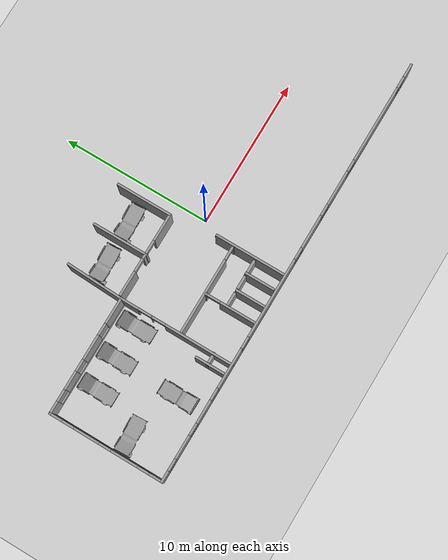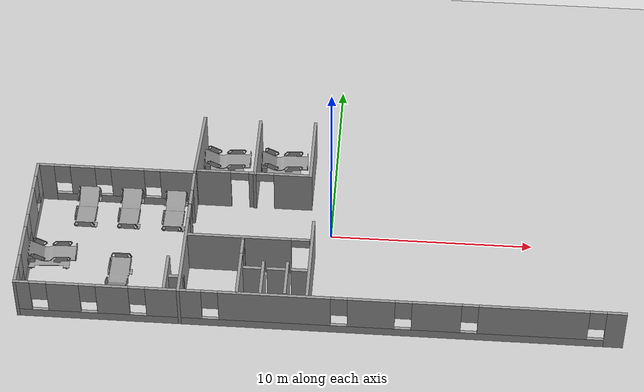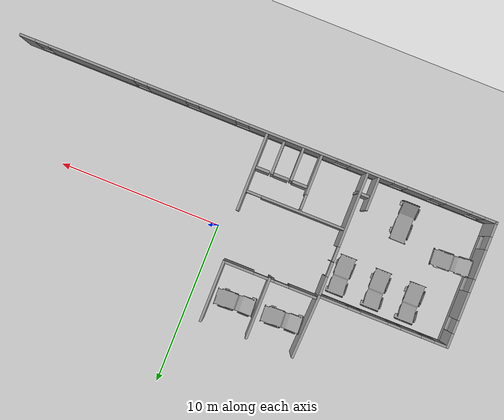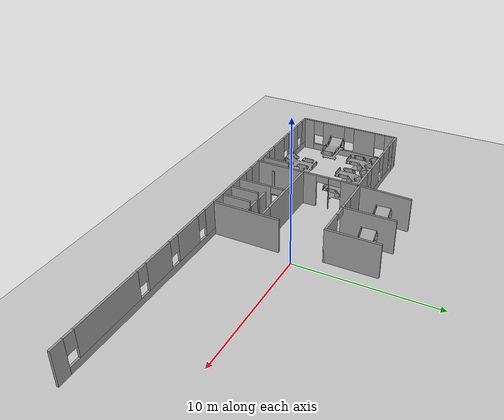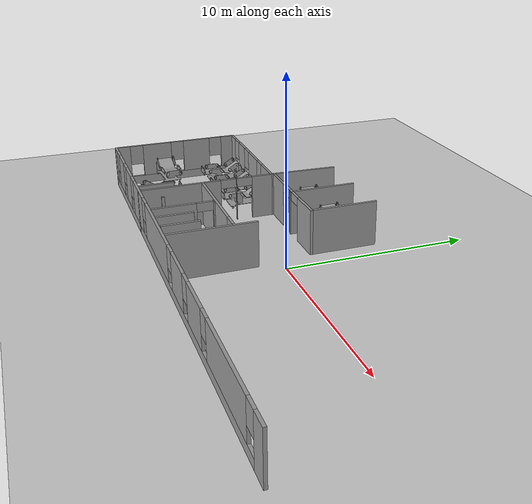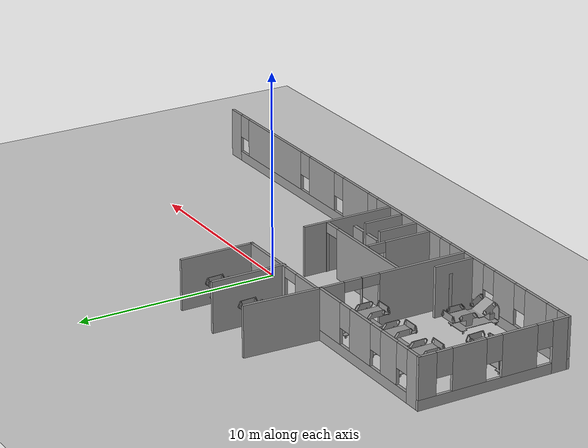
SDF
<sdf version="1.6">
 <world name="default">
  <model name="ground_plane">
   <static>1</static>
   <link name="link">
    <collision name="collision">
     <geometry><plane><normal>0 0 1</normal><size>100 100</size></plane></geometry>
     <surface><friction><ode><mu>100</mu><mu2>50</mu2></ode></friction></surface>
    </collision>
    <visual name="visual">
     <cast_shadows>0</cast_shadows>
     <geometry><plane><normal>0 0 1</normal><size>100 100</size></plane></geometry>
     <material>
      <script><uri>file://media/materials/scripts/gazebo.material</uri><name>Gazebo/Grey</name></script>
     </material>
    </visual>
   </link>
  </model>
  <model name="hopial">
   <pose>-0.234733 -0.327575 0 0 -0 0</pose>
   <link name="Door_15">
    <collision name="Door_15_Collision">
     <geometry><box><size>0.9 0.17 2</size></box></geometry>
     <pose>0 0 1 0 -0 0</pose>
    </collision>
    <visual name="Door_15_Visual">
     <pose>0 0 1 0 -0 0</pose>
     <geometry><box><size>0.9 0.17 2</size></box></geometry>
     <material>
      <script><uri>file://media/materials/scripts/gazebo.material</uri><name>Gazebo/Grey</name></script>
     </material>
    </visual>
    <pose>-1.01365 -3.61001 0 0 -0 0</pose>
   </link>
   <link name="Door_16">
    <collision name="Door_16_Collision">
     <geometry><box><size>0.9 0.17 2</size></box></geometry>
     <pose>0 0 1 0 -0 0</pose>
    </collision>
    <visual name="Door_16_Visual">
     <pose>0 0 1 0 -0 0</pose>
     <geometry><box><size>0.9 0.17 2</size></box></geometry>
     <material>
      <script><uri>file://media/materials/scripts/gazebo.material</uri><name>Gazebo/Grey</name></script>
     </material>
    </visual>
    <pose>-3.33985 -3.61001 0 0 -0 0</pose>
   </link>
   <link name="Door_17">
    <collision name="Door_17_Collision">
     <geometry><box><size>0.9 0.17 2</size></box></geometry>
     <pose>0 0 1 0 -0 0</pose>
    </collision>
    <visual name="Door_17_Visual">
     <pose>0 0 1 0 -0 0</pose>
     <geometry><box><size>0.9 0.17 2</size></box></geometry>
     <material>
      <script><uri>file://media/materials/scripts/gazebo.material</uri><name>Gazebo/Grey</name></script>
     </material>
    </visual>
    <pose>-2.17675 -3.61001 0 0 -0 0</pose>
   </link>
   <link name="Door_18">
    <collision name="Door_18_Collision">
     <geometry><box><size>0.9 0.17 2</size></box></geometry>
     <pose>0 0 1 0 -0 0</pose>
    </collision>
    <visual name="Door_18_Visual">
     <pose>0 0 1 0 -0 0</pose>
     <geometry><box><size>0.9 0.17 2</size></box></geometry>
     <material>
      <script><uri>file://media/materials/scripts/gazebo.material</uri><name>Gazebo/Grey</name></script>
     </material>
    </visual>
    <pose>-7.01524 -4.40091 0 0 -0 0</pose>
   </link>
   <link name="Wall_11">
    <collision name="Wall_11_Collision">
     <geometry><box><size>2 0.15 2.5</size></box></geometry>
     <pose>0 0 1.25 0 -0 0</pose>
    </collision>
    <visual name="Wall_11_Visual">
     <pose>0 0 1.25 0 -0 0</pose>
     <geometry><box><size>2 0.15 2.5</size></box></geometry>
     <material>
      <script><uri>file://media/materials/scripts/gazebo.material</uri><name>Gazebo/Grey</name></script>
      <ambient>1 1 1 1</ambient>
     </material>
    </visual>
    <pose>-7.38743 -4.58153 0 0 0 -1.5708</pose>
   </link>
   <link name="Wall_13">
    <collision name="Wall_13_Collision">
     <geometry><box><size>3.75 0.15 2.5</size></box></geometry>
     <pose>0 0 1.25 0 -0 0</pose>
    </collision>
    <visual name="Wall_13_Visual">
     <pose>0 0 1.25 0 -0 0</pose>
     <geometry><box><size>3.75 0.15 2.5</size></box></geometry>
     <material>
      <script><uri>file://media/materials/scripts/gazebo.material</uri><name>Gazebo/Grey</name></script>
      <ambient>1 1 1 1</ambient>
     </material>
    </visual>
    <pose>-0.920607 3.89478 0 0 0 -1.5708</pose>
   </link>
   <link name="Wall_14">
    <pose>-3.72061 2.09478 0 0 -0 3.14159</pose>
    <visual name="Wall_14_Visual_0">
     <pose>-1.92266 0 1.25 0 -0 0</pose>
     <geometry><box><size>1.90467 0.15 2.5</size></box></geometry>
     <material>
      <script><uri>file://media/materials/scripts/gazebo.material</uri><name>Gazebo/Grey</name></script>
      <ambient>1 1 1 1</ambient>
     </material>
    </visual>
    <collision name="Wall_14_Collision_0">
     <geometry><box><size>1.90467 0.15 2.5</size></box></geometry>
     <pose>-1.92266 0 1.25 0 -0 0</pose>
    </collision>
    <visual name="Wall_14_Visual_1">
     <pose>0.107745 0 1.25 0 -0 0</pose>
     <geometry><box><size>0.356146 0.15 2.5</size></box></geometry>
     <material>
      <script><uri>file://media/materials/scripts/gazebo.material</uri><name>Gazebo/Grey</name></script>
      <ambient>1 1 1 1</ambient>
     </material>
    </visual>
    <collision name="Wall_14_Collision_1">
     <geometry><box><size>0.356146 0.15 2.5</size></box></geometry>
     <pose>0.107745 0 1.25 0 -0 0</pose>
    </collision>
    <visual name="Wall_14_Visual_2">
     <pose>2.03041 0 1.25 0 -0 0</pose>
     <geometry><box><size>1.68918 0.15 2.5</size></box></geometry>
     <material>
      <script><uri>file://media/materials/scripts/gazebo.material</uri><name>Gazebo/Grey</name></script>
      <ambient>1 1 1 1</ambient>
     </material>
    </visual>
    <collision name="Wall_14_Collision_2">
     <geometry><box><size>1.68918 0.15 2.5</size></box></geometry>
     <pose>2.03041 0 1.25 0 -0 0</pose>
    </collision>
    <visual name="Wall_14_Visual_3">
     <pose>-0.520328 0 2.25 0 -0 0</pose>
     <geometry><box><size>0.9 0.15 0.5</size></box></geometry>
     <material>
      <script><uri>file://media/materials/scripts/gazebo.material</uri><name>Gazebo/Grey</name></script>
      <ambient>1 1 1 1</ambient>
     </material>
    </visual>
    <collision name="Wall_14_Collision_3">
     <geometry><box><size>0.9 0.15 0.5</size></box></geometry>
     <pose>-0.520328 0 2.25 0 -0 0</pose>
    </collision>
    <visual name="Wall_14_Visual_4">
     <pose>0.735818 0 2.25 0 -0 0</pose>
     <geometry><box><size>0.9 0.15 0.5</size></box></geometry>
     <material>
      <script><uri>file://media/materials/scripts/gazebo.material</uri><name>Gazebo/Grey</name></script>
      <ambient>1 1 1 1</ambient>
     </material>
    </visual>
    <collision name="Wall_14_Collision_4">
     <geometry><box><size>0.9 0.15 0.5</size></box></geometry>
     <pose>0.735818 0 2.25 0 -0 0</pose>
    </collision>
   </link>
   <link name="Wall_16">
    <collision name="Wall_16_Collision">
     <geometry><box><size>3.75 0.15 2.5</size></box></geometry>
     <pose>0 0 1.25 0 -0 0</pose>
    </collision>
    <visual name="Wall_16_Visual">
     <pose>0 0 1.25 0 -0 0</pose>
     <geometry><box><size>3.75 0.15 2.5</size></box></geometry>
     <material>
      <script><uri>file://media/materials/scripts/gazebo.material</uri><name>Gazebo/Grey</name></script>
      <ambient>1 1 1 1</ambient>
     </material>
    </visual>
    <pose>-3.71204 3.84825 0 0 0 -1.5708</pose>
   </link>
   <link name="Wall_2">
    <pose>0 -5.65522 0 0 -0 3.14159</pose>
    <visual name="Wall_2_Visual_0">
     <pose>-14.1471 0 1.25 0 -0 0</pose>
     <geometry><box><size>0.955813 0.15 2.5</size></box></geometry>
     <material>
      <script><uri>file://media/materials/scripts/gazebo.material</uri><name>Gazebo/Grey</name></script>
      <ambient>1 1 1 1</ambient>
     </material>
    </visual>
    <collision name="Wall_2_Collision_0">
     <geometry><box><size>0.955813 0.15 2.5</size></box></geometry>
     <pose>-14.1471 0 1.25 0 -0 0</pose>
    </collision>
    <visual name="Wall_2_Visual_1">
     <pose>0.477906 0 0.25 0 -0 0</pose>
     <geometry><box><size>28.2942 0.15 0.5</size></box></geometry>
     <material>
      <script><uri>file://media/materials/scripts/gazebo.material</uri><name>Gazebo/Grey</name></script>
      <ambient>1 1 1 1</ambient>
     </material>
    </visual>
    <collision name="Wall_2_Collision_1">
     <geometry><box><size>28.2942 0.15 0.5</size></box></geometry>
     <pose>0.477906 0 0.25 0 -0 0</pose>
    </collision>
    <visual name="Wall_2_Visual_2">
     <pose>-10.2451 0 1.5 0 -0 0</pose>
     <geometry><box><size>5.24811 0.15 2</size></box></geometry>
     <material>
      <script><uri>file://media/materials/scripts/gazebo.material</uri><name>Gazebo/Grey</name></script>
      <ambient>1 1 1 1</ambient>
     </material>
    </visual>
    <collision name="Wall_2_Collision_2">
     <geometry><box><size>5.24811 0.15 2</size></box></geometry>
     <pose>-10.2451 0 1.5 0 -0 0</pose>
    </collision>
    <visual name="Wall_2_Visual_3">
     <pose>-5.63926 0 1.5 0 -0 0</pose>
     <geometry><box><size>2.36363 0.15 2</size></box></geometry>
     <material>
      <script><uri>file://media/materials/scripts/gazebo.material</uri><name>Gazebo/Grey</name></script>
      <ambient>1 1 1 1</ambient>
     </material>
    </visual>
    <collision name="Wall_2_Collision_3">
     <geometry><box><size>2.36363 0.15 2</size></box></geometry>
     <pose>-5.63926 0 1.5 0 -0 0</pose>
    </collision>
    <visual name="Wall_2_Visual_4">
     <pose>-2.52216 0 1.5 0 -0 0</pose>
     <geometry><box><size>2.27058 0.15 2</size></box></geometry>
     <material>
      <script><uri>file://media/materials/scripts/gazebo.material</uri><name>Gazebo/Grey</name></script>
      <ambient>1 1 1 1</ambient>
     </material>
    </visual>
    <collision name="Wall_2_Collision_4">
     <geometry><box><size>2.27058 0.15 2</size></box></geometry>
     <pose>-2.52216 0 1.5 0 -0 0</pose>
    </collision>
    <visual name="Wall_2_Visual_5">
     <pose>2.10697 0 1.5 0 -0 0</pose>
     <geometry><box><size>5.38768 0.15 2</size></box></geometry>
     <material>
      <script><uri>file://media/materials/scripts/gazebo.material</uri><name>Gazebo/Grey</name></script>
      <ambient>1 1 1 1</ambient>
     </material>
    </visual>
    <collision name="Wall_2_Collision_5">
     <geometry><box><size>5.38768 0.15 2</size></box></geometry>
     <pose>2.10697 0 1.5 0 -0 0</pose>
    </collision>
    <visual name="Wall_2_Visual_6">
     <pose>6.94545 0 1.5 0 -0 0</pose>
     <geometry><box><size>2.68929 0.15 2</size></box></geometry>
     <material>
      <script><uri>file://media/materials/scripts/gazebo.material</uri><name>Gazebo/Grey</name></script>
      <ambient>1 1 1 1</ambient>
     </material>
    </visual>
    <collision name="Wall_2_Collision_6">
     <geometry><box><size>2.68929 0.15 2</size></box></geometry>
     <pose>6.94545 0 1.5 0 -0 0</pose>
    </collision>
    <visual name="Wall_2_Visual_7">
     <pose>9.87646 0 1.5 0 -0 0</pose>
     <geometry><box><size>1.57272 0.15 2</size></box></geometry>
     <material>
      <script><uri>file://media/materials/scripts/gazebo.material</uri><name>Gazebo/Grey</name></script>
      <ambient>1 1 1 1</ambient>
     </material>
    </visual>
    <collision name="Wall_2_Collision_7">
     <geometry><box><size>1.57272 0.15 2</size></box></geometry>
     <pose>9.87646 0 1.5 0 -0 0</pose>
    </collision>
    <visual name="Wall_2_Visual_8">
     <pose>12.2492 0 1.5 0 -0 0</pose>
     <geometry><box><size>1.57272 0.15 2</size></box></geometry>
     <material>
      <script><uri>file://media/materials/scripts/gazebo.material</uri><name>Gazebo/Grey</name></script>
      <ambient>1 1 1 1</ambient>
     </material>
    </visual>
    <collision name="Wall_2_Collision_8">
     <geometry><box><size>1.57272 0.15 2</size></box></geometry>
     <pose>12.2492 0 1.5 0 -0 0</pose>
    </collision>
    <visual name="Wall_2_Visual_9">
     <pose>14.2303 0 1.5 0 -0 0</pose>
     <geometry><box><size>0.789461 0.15 2</size></box></geometry>
     <material>
      <script><uri>file://media/materials/scripts/gazebo.material</uri><name>Gazebo/Grey</name></script>
      <ambient>1 1 1 1</ambient>
     </material>
    </visual>
    <collision name="Wall_2_Collision_9">
     <geometry><box><size>0.789461 0.15 2</size></box></geometry>
     <pose>14.2303 0 1.5 0 -0 0</pose>
    </collision>
    <visual name="Wall_2_Visual_10">
     <pose>-13.2692 0 1.9 0 -0 0</pose>
     <geometry><box><size>0.8 0.15 1.2</size></box></geometry>
     <material>
      <script><uri>file://media/materials/scripts/gazebo.material</uri><name>Gazebo/Grey</name></script>
      <ambient>1 1 1 1</ambient>
     </material>
    </visual>
    <collision name="Wall_2_Collision_10">
     <geometry><box><size>0.8 0.15 1.2</size></box></geometry>
     <pose>-13.2692 0 1.9 0 -0 0</pose>
    </collision>
    <visual name="Wall_2_Visual_11">
     <pose>-7.22108 0 1.9 0 -0 0</pose>
     <geometry><box><size>0.8 0.15 1.2</size></box></geometry>
     <material>
      <script><uri>file://media/materials/scripts/gazebo.material</uri><name>Gazebo/Grey</name></script>
      <ambient>1 1 1 1</ambient>
     </material>
    </visual>
    <collision name="Wall_2_Collision_11">
     <geometry><box><size>0.8 0.15 1.2</size></box></geometry>
     <pose>-7.22108 0 1.9 0 -0 0</pose>
    </collision>
    <visual name="Wall_2_Visual_12">
     <pose>-4.05745 0 1.9 0 -0 0</pose>
     <geometry><box><size>0.8 0.15 1.2</size></box></geometry>
     <material>
      <script><uri>file://media/materials/scripts/gazebo.material</uri><name>Gazebo/Grey</name></script>
      <ambient>1 1 1 1</ambient>
     </material>
    </visual>
    <collision name="Wall_2_Collision_12">
     <geometry><box><size>0.8 0.15 1.2</size></box></geometry>
     <pose>-4.05745 0 1.9 0 -0 0</pose>
    </collision>
    <visual name="Wall_2_Visual_13">
     <pose>-0.986874 0 1.9 0 -0 0</pose>
     <geometry><box><size>0.8 0.15 1.2</size></box></geometry>
     <material>
      <script><uri>file://media/materials/scripts/gazebo.material</uri><name>Gazebo/Grey</name></script>
      <ambient>1 1 1 1</ambient>
     </material>
    </visual>
    <collision name="Wall_2_Collision_13">
     <geometry><box><size>0.8 0.15 1.2</size></box></geometry>
     <pose>-0.986874 0 1.9 0 -0 0</pose>
    </collision>
    <visual name="Wall_2_Visual_14">
     <pose>5.20081 0 1.9 0 -0 0</pose>
     <geometry><box><size>0.8 0.15 1.2</size></box></geometry>
     <material>
      <script><uri>file://media/materials/scripts/gazebo.material</uri><name>Gazebo/Grey</name></script>
      <ambient>1 1 1 1</ambient>
     </material>
    </visual>
    <collision name="Wall_2_Collision_14">
     <geometry><box><size>0.8 0.15 1.2</size></box></geometry>
     <pose>5.20081 0 1.9 0 -0 0</pose>
    </collision>
    <visual name="Wall_2_Visual_15">
     <pose>8.6901 0 1.9 0 -0 0</pose>
     <geometry><box><size>0.8 0.15 1.2</size></box></geometry>
     <material>
      <script><uri>file://media/materials/scripts/gazebo.material</uri><name>Gazebo/Grey</name></script>
      <ambient>1 1 1 1</ambient>
     </material>
    </visual>
    <collision name="Wall_2_Collision_15">
     <geometry><box><size>0.8 0.15 1.2</size></box></geometry>
     <pose>8.6901 0 1.9 0 -0 0</pose>
    </collision>
    <visual name="Wall_2_Visual_16">
     <pose>11.0628 0 1.9 0 -0 0</pose>
     <geometry><box><size>0.8 0.15 1.2</size></box></geometry>
     <material>
      <script><uri>file://media/materials/scripts/gazebo.material</uri><name>Gazebo/Grey</name></script>
      <ambient>1 1 1 1</ambient>
     </material>
    </visual>
    <collision name="Wall_2_Collision_16">
     <geometry><box><size>0.8 0.15 1.2</size></box></geometry>
     <pose>11.0628 0 1.9 0 -0 0</pose>
    </collision>
    <visual name="Wall_2_Visual_17">
     <pose>13.4355 0 1.9 0 -0 0</pose>
     <geometry><box><size>0.8 0.15 1.2</size></box></geometry>
     <material>
      <script><uri>file://media/materials/scripts/gazebo.material</uri><name>Gazebo/Grey</name></script>
      <ambient>1 1 1 1</ambient>
     </material>
    </visual>
    <collision name="Wall_2_Collision_17">
     <geometry><box><size>0.8 0.15 1.2</size></box></geometry>
     <pose>13.4355 0 1.9 0 -0 0</pose>
    </collision>
   </link>
   <link name="Wall_21">
    <pose>-3.625 -2.12124 0 0 -0 0</pose>
    <visual name="Wall_21_Visual_0">
     <pose>-0.465851 0 1.25 0 -0 0</pose>
     <geometry><box><size>5.0683 0.15 2.5</size></box></geometry>
     <material>
      <script><uri>file://media/materials/scripts/gazebo.material</uri><name>Gazebo/Grey</name></script>
      <ambient>1 1 1 1</ambient>
     </material>
    </visual>
    <collision name="Wall_21_Collision_0">
     <geometry><box><size>5.0683 0.15 2.5</size></box></geometry>
     <pose>-0.465851 0 1.25 0 -0 0</pose>
    </collision>
    <visual name="Wall_21_Visual_1">
     <pose>2.98415 0 1.25 0 -0 0</pose>
     <geometry><box><size>0.031702 0.15 2.5</size></box></geometry>
     <material>
      <script><uri>file://media/materials/scripts/gazebo.material</uri><name>Gazebo/Grey</name></script>
      <ambient>1 1 1 1</ambient>
     </material>
    </visual>
    <collision name="Wall_21_Collision_1">
     <geometry><box><size>0.031702 0.15 2.5</size></box></geometry>
     <pose>2.98415 0 1.25 0 -0 0</pose>
    </collision>
    <visual name="Wall_21_Visual_2">
     <pose>2.5183 0 2.25 0 -0 0</pose>
     <geometry><box><size>0.9 0.15 0.5</size></box></geometry>
     <material>
      <script><uri>file://media/materials/scripts/gazebo.material</uri><name>Gazebo/Grey</name></script>
      <ambient>1 1 1 1</ambient>
     </material>
    </visual>
    <collision name="Wall_21_Collision_2">
     <geometry><box><size>0.9 0.15 0.5</size></box></geometry>
     <pose>2.5183 0 2.25 0 -0 0</pose>
    </collision>
   </link>
   <link name="Wall_23">
    <collision name="Wall_23_Collision">
     <geometry><box><size>4.75 0.15 2.5</size></box></geometry>
     <pose>0 0 1.25 0 -0 0</pose>
    </collision>
    <visual name="Wall_23_Visual">
     <pose>0 0 1.25 0 -0 0</pose>
     <geometry><box><size>4.75 0.15 2.5</size></box></geometry>
     <material>
      <script><uri>file://media/materials/scripts/gazebo.material</uri><name>Gazebo/Grey</name></script>
      <ambient>1 1 1 1</ambient>
     </material>
    </visual>
    <pose>-0.548415 -3.25814 0 0 0 -1.5708</pose>
   </link>
   <link name="Wall_25">
    <collision name="Wall_25_Collision">
     <geometry><box><size>2 0.15 2.5</size></box></geometry>
     <pose>0 0 1.25 0 -0 0</pose>
    </collision>
    <visual name="Wall_25_Visual">
     <pose>0 0 1.25 0 -0 0</pose>
     <geometry><box><size>2 0.15 2.5</size></box></geometry>
     <material>
      <script><uri>file://media/materials/scripts/gazebo.material</uri><name>Gazebo/Grey</name></script>
      <ambient>1 1 1 1</ambient>
     </material>
    </visual>
    <pose>-1.61847 -4.53501 0 0 0 -1.5708</pose>
   </link>
   <link name="Wall_28">
    <collision name="Wall_28_Collision">
     <geometry><box><size>2 0.15 2.5</size></box></geometry>
     <pose>0 0 1.25 0 -0 0</pose>
    </collision>
    <visual name="Wall_28_Visual">
     <pose>0 0 1.25 0 -0 0</pose>
     <geometry><box><size>2 0.15 2.5</size></box></geometry>
     <material>
      <script><uri>file://media/materials/scripts/gazebo.material</uri><name>Gazebo/Grey</name></script>
      <ambient>1 1 1 1</ambient>
     </material>
    </visual>
    <pose>-2.78156 -4.58153 0 0 0 -1.5708</pose>
   </link>
   <link name="Wall_3">
    <pose>-14.55 -1.85522 0 0 -0 1.5708</pose>
    <visual name="Wall_3_Visual_0">
     <pose>-3.41034 0 1.25 0 -0 0</pose>
     <geometry><box><size>0.929311 0.15 2.5</size></box></geometry>
     <material>
      <script><uri>file://media/materials/scripts/gazebo.material</uri><name>Gazebo/Grey</name></script>
      <ambient>1 1 1 1</ambient>
     </material>
    </visual>
    <collision name="Wall_3_Collision_0">
     <geometry><box><size>0.929311 0.15 2.5</size></box></geometry>
     <pose>-3.41034 0 1.25 0 -0 0</pose>
    </collision>
    <visual name="Wall_3_Visual_1">
     <pose>0.464655 0 0.25 0 -0 0</pose>
     <geometry><box><size>6.82069 0.15 0.5</size></box></geometry>
     <material>
      <script><uri>file://media/materials/scripts/gazebo.material</uri><name>Gazebo/Grey</name></script>
      <ambient>1 1 1 1</ambient>
     </material>
    </visual>
    <collision name="Wall_3_Collision_1">
     <geometry><box><size>6.82069 0.15 0.5</size></box></geometry>
     <pose>0.464655 0 0.25 0 -0 0</pose>
    </collision>
    <visual name="Wall_3_Visual_2">
     <pose>-1.24302 0 1.5 0 -0 0</pose>
     <geometry><box><size>1.80534 0.15 2</size></box></geometry>
     <material>
      <script><uri>file://media/materials/scripts/gazebo.material</uri><name>Gazebo/Grey</name></script>
      <ambient>1 1 1 1</ambient>
     </material>
    </visual>
    <collision name="Wall_3_Collision_2">
     <geometry><box><size>1.80534 0.15 2</size></box></geometry>
     <pose>-1.24302 0 1.5 0 -0 0</pose>
    </collision>
    <visual name="Wall_3_Visual_3">
     <pose>1.3158 0 1.5 0 -0 0</pose>
     <geometry><box><size>1.71229 0.15 2</size></box></geometry>
     <material>
      <script><uri>file://media/materials/scripts/gazebo.material</uri><name>Gazebo/Grey</name></script>
      <ambient>1 1 1 1</ambient>
     </material>
    </visual>
    <collision name="Wall_3_Collision_3">
     <geometry><box><size>1.71229 0.15 2</size></box></geometry>
     <pose>1.3158 0 1.5 0 -0 0</pose>
    </collision>
    <visual name="Wall_3_Visual_4">
     <pose>3.42347 0 1.5 0 -0 0</pose>
     <geometry><box><size>0.903059 0.15 2</size></box></geometry>
     <material>
      <script><uri>file://media/materials/scripts/gazebo.material</uri><name>Gazebo/Grey</name></script>
      <ambient>1 1 1 1</ambient>
     </material>
    </visual>
    <collision name="Wall_3_Collision_4">
     <geometry><box><size>0.903059 0.15 2</size></box></geometry>
     <pose>3.42347 0 1.5 0 -0 0</pose>
    </collision>
    <visual name="Wall_3_Visual_5">
     <pose>-2.54569 0 1.9 0 -0 0</pose>
     <geometry><box><size>0.8 0.15 1.2</size></box></geometry>
     <material>
      <script><uri>file://media/materials/scripts/gazebo.material</uri><name>Gazebo/Grey</name></script>
      <ambient>1 1 1 1</ambient>
     </material>
    </visual>
    <collision name="Wall_3_Collision_5">
     <geometry><box><size>0.8 0.15 1.2</size></box></geometry>
     <pose>-2.54569 0 1.9 0 -0 0</pose>
    </collision>
    <visual name="Wall_3_Visual_6">
     <pose>0.05965 0 1.9 0 -0 0</pose>
     <geometry><box><size>0.8 0.15 1.2</size></box></geometry>
     <material>
      <script><uri>file://media/materials/scripts/gazebo.material</uri><name>Gazebo/Grey</name></script>
      <ambient>1 1 1 1</ambient>
     </material>
    </visual>
    <collision name="Wall_3_Collision_6">
     <geometry><box><size>0.8 0.15 1.2</size></box></geometry>
     <pose>0.05965 0 1.9 0 -0 0</pose>
    </collision>
    <visual name="Wall_3_Visual_7">
     <pose>2.57194 0 1.9 0 -0 0</pose>
     <geometry><box><size>0.8 0.15 1.2</size></box></geometry>
     <material>
      <script><uri>file://media/materials/scripts/gazebo.material</uri><name>Gazebo/Grey</name></script>
      <ambient>1 1 1 1</ambient>
     </material>
    </visual>
    <collision name="Wall_3_Collision_7">
     <geometry><box><size>0.8 0.15 1.2</size></box></geometry>
     <pose>2.57194 0 1.9 0 -0 0</pose>
    </collision>
   </link>
   <link name="Wall_30">
    <pose>-3.89814 -3.88929 0 0 0 -1.5708</pose>
    <visual name="Wall_30_Visual_0">
     <pose>-1.68162 0 1.25 0 -0 0</pose>
     <geometry><box><size>0.136763 0.15 2.5</size></box></geometry>
     <material>
      <script><uri>file://media/materials/scripts/gazebo.material</uri><name>Gazebo/Grey</name></script>
      <ambient>1 1 1 1</ambient>
     </material>
    </visual>
    <collision name="Wall_30_Collision_0">
     <geometry><box><size>0.136763 0.15 2.5</size></box></geometry>
     <pose>-1.68162 0 1.25 0 -0 0</pose>
    </collision>
    <visual name="Wall_30_Visual_1">
     <pose>0.518381 0 1.25 0 -0 0</pose>
     <geometry><box><size>2.46324 0.15 2.5</size></box></geometry>
     <material>
      <script><uri>file://media/materials/scripts/gazebo.material</uri><name>Gazebo/Grey</name></script>
      <ambient>1 1 1 1</ambient>
     </material>
    </visual>
    <collision name="Wall_30_Collision_1">
     <geometry><box><size>2.46324 0.15 2.5</size></box></geometry>
     <pose>0.518381 0 1.25 0 -0 0</pose>
    </collision>
    <visual name="Wall_30_Visual_2">
     <pose>-1.16324 0 2.25 0 -0 0</pose>
     <geometry><box><size>0.9 0.15 0.5</size></box></geometry>
     <material>
      <script><uri>file://media/materials/scripts/gazebo.material</uri><name>Gazebo/Grey</name></script>
      <ambient>1 1 1 1</ambient>
     </material>
    </visual>
    <collision name="Wall_30_Collision_2">
     <geometry><box><size>0.9 0.15 0.5</size></box></geometry>
     <pose>-1.16324 0 2.25 0 -0 0</pose>
    </collision>
   </link>
   <link name="Wall_4">
    <pose>-10.625 1.94478 0 0 -0 0</pose>
    <visual name="Wall_4_Visual_0">
     <pose>-3.55875 0 1.25 0 -0 0</pose>
     <geometry><box><size>0.882509 0.15 2.5</size></box></geometry>
     <material>
      <script><uri>file://media/materials/scripts/gazebo.material</uri><name>Gazebo/Grey</name></script>
      <ambient>1 1 1 1</ambient>
     </material>
    </visual>
    <collision name="Wall_4_Collision_0">
     <geometry><box><size>0.882509 0.15 2.5</size></box></geometry>
     <pose>-3.55875 0 1.25 0 -0 0</pose>
    </collision>
    <visual name="Wall_4_Visual_1">
     <pose>0.441254 0 0.25 0 -0 0</pose>
     <geometry><box><size>7.11749 0.15 0.5</size></box></geometry>
     <material>
      <script><uri>file://media/materials/scripts/gazebo.material</uri><name>Gazebo/Grey</name></script>
      <ambient>1 1 1 1</ambient>
     </material>
    </visual>
    <collision name="Wall_4_Collision_1">
     <geometry><box><size>7.11749 0.15 0.5</size></box></geometry>
     <pose>0.441254 0 0.25 0 -0 0</pose>
    </collision>
    <visual name="Wall_4_Visual_2">
     <pose>-1.69396 0 1.5 0 -0 0</pose>
     <geometry><box><size>1.24705 0.15 2</size></box></geometry>
     <material>
      <script><uri>file://media/materials/scripts/gazebo.material</uri><name>Gazebo/Grey</name></script>
      <ambient>1 1 1 1</ambient>
     </material>
    </visual>
    <collision name="Wall_4_Collision_2">
     <geometry><box><size>1.24705 0.15 2</size></box></geometry>
     <pose>-1.69396 0 1.5 0 -0 0</pose>
    </collision>
    <visual name="Wall_4_Visual_3">
     <pose>0.562444 0 1.5 0 -0 0</pose>
     <geometry><box><size>1.66577 0.15 2</size></box></geometry>
     <material>
      <script><uri>file://media/materials/scripts/gazebo.material</uri><name>Gazebo/Grey</name></script>
      <ambient>1 1 1 1</ambient>
     </material>
    </visual>
    <collision name="Wall_4_Collision_3">
     <geometry><box><size>1.66577 0.15 2</size></box></geometry>
     <pose>0.562444 0 1.5 0 -0 0</pose>
    </collision>
    <visual name="Wall_4_Visual_4">
     <pose>3.09766 0 1.5 0 -0 0</pose>
     <geometry><box><size>1.80467 0.15 2</size></box></geometry>
     <material>
      <script><uri>file://media/materials/scripts/gazebo.material</uri><name>Gazebo/Grey</name></script>
      <ambient>1 1 1 1</ambient>
     </material>
    </visual>
    <collision name="Wall_4_Collision_4">
     <geometry><box><size>1.80467 0.15 2</size></box></geometry>
     <pose>3.09766 0 1.5 0 -0 0</pose>
    </collision>
    <visual name="Wall_4_Visual_5">
     <pose>-2.71749 0 1.9 0 -0 0</pose>
     <geometry><box><size>0.8 0.15 1.2</size></box></geometry>
     <material>
      <script><uri>file://media/materials/scripts/gazebo.material</uri><name>Gazebo/Grey</name></script>
      <ambient>1 1 1 1</ambient>
     </material>
    </visual>
    <collision name="Wall_4_Collision_5">
     <geometry><box><size>0.8 0.15 1.2</size></box></geometry>
     <pose>-2.71749 0 1.9 0 -0 0</pose>
    </collision>
    <visual name="Wall_4_Visual_6">
     <pose>-0.67044 0 1.9 0 -0 0</pose>
     <geometry><box><size>0.8 0.15 1.2</size></box></geometry>
     <material>
      <script><uri>file://media/materials/scripts/gazebo.material</uri><name>Gazebo/Grey</name></script>
      <ambient>1 1 1 1</ambient>
     </material>
    </visual>
    <collision name="Wall_4_Collision_6">
     <geometry><box><size>0.8 0.15 1.2</size></box></geometry>
     <pose>-0.67044 0 1.9 0 -0 0</pose>
    </collision>
    <visual name="Wall_4_Visual_7">
     <pose>1.79533 0 1.9 0 -0 0</pose>
     <geometry><box><size>0.8 0.15 1.2</size></box></geometry>
     <material>
      <script><uri>file://media/materials/scripts/gazebo.material</uri><name>Gazebo/Grey</name></script>
      <ambient>1 1 1 1</ambient>
     </material>
    </visual>
    <collision name="Wall_4_Collision_7">
     <geometry><box><size>0.8 0.15 1.2</size></box></geometry>
     <pose>1.79533 0 1.9 0 -0 0</pose>
    </collision>
   </link>
   <link name="Wall_5">
    <collision name="Wall_5_Collision">
     <geometry><box><size>3.903 0.15 2.5</size></box></geometry>
     <pose>0 0 1.25 0 -0 0</pose>
    </collision>
    <visual name="Wall_5_Visual">
     <pose>0 0 1.25 0 -0 0</pose>
     <geometry><box><size>3.903 0.15 2.5</size></box></geometry>
     <material>
      <script><uri>file://media/materials/scripts/gazebo.material</uri><name>Gazebo/Grey</name></script>
      <ambient>1 1 1 1</ambient>
     </material>
    </visual>
    <pose>-6.625 3.81978 0 0 -0 1.53082</pose>
   </link>
   <link name="Wall_9">
    <pose>-6.7 -1.85522 0 0 0 -1.5708</pose>
    <visual name="Wall_9_Visual_0">
     <pose>-3.23911 0 1.25 0 -0 0</pose>
     <geometry><box><size>1.27177 0.15 2.5</size></box></geometry>
     <material>
      <script><uri>file://media/materials/scripts/gazebo.material</uri><name>Gazebo/Grey</name></script>
      <ambient>1 1 1 1</ambient>
     </material>
    </visual>
    <collision name="Wall_9_Collision_0">
     <geometry><box><size>1.27177 0.15 2.5</size></box></geometry>
     <pose>-3.23911 0 1.25 0 -0 0</pose>
    </collision>
    <visual name="Wall_9_Visual_1">
     <pose>-1.68799 0 1.25 0 -0 0</pose>
     <geometry><box><size>0.030478 0.15 2.5</size></box></geometry>
     <material>
      <script><uri>file://media/materials/scripts/gazebo.material</uri><name>Gazebo/Grey</name></script>
      <ambient>1 1 1 1</ambient>
     </material>
    </visual>
    <collision name="Wall_9_Collision_1">
     <geometry><box><size>0.030478 0.15 2.5</size></box></geometry>
     <pose>-1.68799 0 1.25 0 -0 0</pose>
    </collision>
    <visual name="Wall_9_Visual_2">
     <pose>1.55113 0 1.25 0 -0 0</pose>
     <geometry><box><size>4.64775 0.15 2.5</size></box></geometry>
     <material>
      <script><uri>file://media/materials/scripts/gazebo.material</uri><name>Gazebo/Grey</name></script>
      <ambient>1 1 1 1</ambient>
     </material>
    </visual>
    <collision name="Wall_9_Collision_2">
     <geometry><box><size>4.64775 0.15 2.5</size></box></geometry>
     <pose>1.55113 0 1.25 0 -0 0</pose>
    </collision>
    <visual name="Wall_9_Visual_3">
     <pose>-2.15323 0 2.25 0 -0 0</pose>
     <geometry><box><size>0.9 0.15 0.5</size></box></geometry>
     <material>
      <script><uri>file://media/materials/scripts/gazebo.material</uri><name>Gazebo/Grey</name></script>
      <ambient>1 1 1 1</ambient>
     </material>
    </visual>
    <collision name="Wall_9_Collision_3">
     <geometry><box><size>0.9 0.15 0.5</size></box></geometry>
     <pose>-2.15323 0 2.25 0 -0 0</pose>
    </collision>
    <visual name="Wall_9_Visual_4">
     <pose>-1.22275 0 2.25 0 -0 0</pose>
     <geometry><box><size>0.9 0.15 0.5</size></box></geometry>
     <material>
      <script><uri>file://media/materials/scripts/gazebo.material</uri><name>Gazebo/Grey</name></script>
      <ambient>1 1 1 1</ambient>
     </material>
    </visual>
    <collision name="Wall_9_Collision_4">
     <geometry><box><size>0.9 0.15 0.5</size></box></geometry>
     <pose>-1.22275 0 2.25 0 -0 0</pose>
    </collision>
   </link>
   <static>1</static>
  </model>
  <model name="hospitalbed">
   <link name="link">
    <pose>-0.225882 -1.75851 0 0 -0 0</pose>
    <inertial>
     <mass>1</mass>
     <inertia>
      <ixx>0.166667</ixx>
      <ixy>0</ixy>
      <ixz>0</ixz>
      <iyy>0.166667</iyy>
      <iyz>0</iyz>
      <izz>0.166667</izz>
     </inertia>
    </inertial>
    <visual name="visual">
     <geometry><mesh><uri>/home/firas/Desktop/model.dae</uri><scale>1 1 1</scale></mesh></geometry>
     <material>
      <script><name>Gazebo/Grey</name><uri>file://media/materials/scripts/gazebo.material</uri></script>
      <ambient>0.3 0.3 0.3 1</ambient>
      <diffuse>0.7 0.7 0.7 1</diffuse>
      <specular>0.01 0.01 0.01 1</specular>
      <emissive>0 0 0 1</emissive>
      <shader type="vertex"><normal_map>__default__</normal_map></shader>
     </material>
    </visual>
    <collision name="collision">
     <geometry><box><size>1 1 1</size></box></geometry>
     <surface>
      <friction>
       <ode><mu>1</mu><mu2>1</mu2><fdir1>0 0 0</fdir1><slip1>0</slip1><slip2>0</slip2></ode>
       <torsional>
        <coefficient>1</coefficient>
        <patch_radius>0</patch_radius>
        <surface_radius>0</surface_radius>
        <use_patch_radius>1</use_patch_radius>
        <ode><slip>0</slip></ode>
       </torsional>
      </friction>
      <bounce><restitution_coefficient>0</restitution_coefficient><threshold>1e+06</threshold></bounce>
      <contact>
       <collide_without_contact>0</collide_without_contact>
       <collide_without_contact_bitmask>1</collide_without_contact_bitmask>
       <collide_bitmask>1</collide_bitmask>
       <ode>
        <soft_cfm>0</soft_cfm>
        <soft_erp>0.2</soft_erp>
        <kp>1e+13</kp>
        <kd>1</kd>
        <max_vel>0.01</max_vel>
        <min_depth>0</min_depth>
       </ode>
       <bullet>
        <split_impulse>1</split_impulse>
        <split_impulse_penetration_threshold>-0.01</split_impulse_penetration_threshold>
        <soft_cfm>0</soft_cfm>
        <soft_erp>0.2</soft_erp>
        <kp>1e+13</kp>
        <kd>1</kd>
       </bullet>
      </contact>
     </surface>
    </collision>
   </link>
   <static>0</static>
   <pose>-12.5125 0.63767 0.5 0 -0 0</pose>
  </model>
  <model name="hospitalbed_clone">
   <link name="link">
    <pose>-0.225882 -1.75851 0 0 -0 0</pose>
    <inertial>
     <mass>1</mass>
     <inertia>
      <ixx>0.166667</ixx>
      <ixy>0</ixy>
      <ixz>0</ixz>
      <iyy>0.166667</iyy>
      <iyz>0</iyz>
      <izz>0.166667</izz>
     </inertia>
    </inertial>
    <visual name="visual">
     <geometry><mesh><uri>/home/firas/Desktop/model.dae</uri><scale>1 1 1</scale></mesh></geometry>
     <material>
      <script><name>Gazebo/Grey</name><uri>file://media/materials/scripts/gazebo.material</uri></script>
      <ambient>0.3 0.3 0.3 1</ambient>
      <diffuse>0.7 0.7 0.7 1</diffuse>
      <specular>0.01 0.01 0.01 1</specular>
      <emissive>0 0 0 1</emissive>
      <shader type="vertex"><normal_map>__default__</normal_map></shader>
     </material>
    </visual>
    <collision name="collision">
     <geometry><box><size>1 1 1</size></box></geometry>
     <surface>
      <friction>
       <ode><mu>1</mu><mu2>1</mu2><fdir1>0 0 0</fdir1><slip1>0</slip1><slip2>0</slip2></ode>
       <torsional>
        <coefficient>1</coefficient>
        <patch_radius>0</patch_radius>
        <surface_radius>0</surface_radius>
        <use_patch_radius>1</use_patch_radius>
        <ode><slip>0</slip></ode>
       </torsional>
      </friction>
      <bounce><restitution_coefficient>0</restitution_coefficient><threshold>1e+06</threshold></bounce>
      <contact>
       <collide_without_contact>0</collide_without_contact>
       <collide_without_contact_bitmask>1</collide_without_contact_bitmask>
       <collide_bitmask>1</collide_bitmask>
       <ode>
        <soft_cfm>0</soft_cfm>
        <soft_erp>0.2</soft_erp>
        <kp>1e+13</kp>
        <kd>1</kd>
        <max_vel>0.01</max_vel>
        <min_depth>0</min_depth>
       </ode>
       <bullet>
        <split_impulse>1</split_impulse>
        <split_impulse_penetration_threshold>-0.01</split_impulse_penetration_threshold>
        <soft_cfm>0</soft_cfm>
        <soft_erp>0.2</soft_erp>
        <kp>1e+13</kp>
        <kd>1</kd>
       </bullet>
      </contact>
     </surface>
    </collision>
   </link>
   <static>0</static>
   <pose>-10.3696 0.651522 0.5 0 -0 0</pose>
  </model>
  <model name="hospitalbed_clone_0">
   <link name="link">
    <pose>-0.225882 -1.75851 0 0 -0 0</pose>
    <inertial>
     <mass>1</mass>
     <inertia>
      <ixx>0.166667</ixx>
      <ixy>0</ixy>
      <ixz>0</ixz>
      <iyy>0.166667</iyy>
      <iyz>0</iyz>
      <izz>0.166667</izz>
     </inertia>
    </inertial>
    <visual name="visual">
     <geometry><mesh><uri>/home/firas/Desktop/model.dae</uri><scale>1 1 1</scale></mesh></geometry>
     <material>
      <script><name>Gazebo/Grey</name><uri>file://media/materials/scripts/gazebo.material</uri></script>
      <ambient>0.3 0.3 0.3 1</ambient>
      <diffuse>0.7 0.7 0.7 1</diffuse>
      <specular>0.01 0.01 0.01 1</specular>
      <emissive>0 0 0 1</emissive>
      <shader type="vertex"><normal_map>__default__</normal_map></shader>
     </material>
    </visual>
    <collision name="collision">
     <geometry><box><size>1 1 1</size></box></geometry>
     <surface>
      <friction>
       <ode><mu>1</mu><mu2>1</mu2><fdir1>0 0 0</fdir1><slip1>0</slip1><slip2>0</slip2></ode>
       <torsional>
        <coefficient>1</coefficient>
        <patch_radius>0</patch_radius>
        <surface_radius>0</surface_radius>
        <use_patch_radius>1</use_patch_radius>
        <ode><slip>0</slip></ode>
       </torsional>
      </friction>
      <bounce><restitution_coefficient>0</restitution_coefficient><threshold>1e+06</threshold></bounce>
      <contact>
       <collide_without_contact>0</collide_without_contact>
       <collide_without_contact_bitmask>1</collide_without_contact_bitmask>
       <collide_bitmask>1</collide_bitmask>
       <ode>
        <soft_cfm>0</soft_cfm>
        <soft_erp>0.2</soft_erp>
        <kp>1e+13</kp>
        <kd>1</kd>
        <max_vel>0.01</max_vel>
        <min_depth>0</min_depth>
       </ode>
       <bullet>
        <split_impulse>1</split_impulse>
        <split_impulse_penetration_threshold>-0.01</split_impulse_penetration_threshold>
        <soft_cfm>0</soft_cfm>
        <soft_erp>0.2</soft_erp>
        <kp>1e+13</kp>
        <kd>1</kd>
       </bullet>
      </contact>
     </surface>
    </collision>
   </link>
   <static>0</static>
   <pose>-8.15952 0.637284 0.5 0 -0 0</pose>
  </model>
  <model name="hospitalbed_clone_1">
   <link name="link">
    <pose>-0.225882 -1.75851 0 0 -0 0</pose>
    <inertial>
     <mass>1</mass>
     <inertia>
      <ixx>0.166667</ixx>
      <ixy>0</ixy>
      <ixz>0</ixz>
      <iyy>0.166667</iyy>
      <iyz>0</iyz>
      <izz>0.166667</izz>
     </inertia>
    </inertial>
    <visual name="visual">
     <geometry><mesh><uri>/home/firas/Desktop/model.dae</uri><scale>1 1 1</scale></mesh></geometry>
     <material>
      <script><name>Gazebo/Grey</name><uri>file://media/materials/scripts/gazebo.material</uri></script>
      <ambient>0.3 0.3 0.3 1</ambient>
      <diffuse>0.7 0.7 0.7 1</diffuse>
      <specular>0.01 0.01 0.01 1</specular>
      <emissive>0 0 0 1</emissive>
      <shader type="vertex"><normal_map>__default__</normal_map></shader>
     </material>
    </visual>
    <collision name="collision">
     <geometry><box><size>1 1 1</size></box></geometry>
     <surface>
      <friction>
       <ode><mu>1</mu><mu2>1</mu2><fdir1>0 0 0</fdir1><slip1>0</slip1><slip2>0</slip2></ode>
       <torsional>
        <coefficient>1</coefficient>
        <patch_radius>0</patch_radius>
        <surface_radius>0</surface_radius>
        <use_patch_radius>1</use_patch_radius>
        <ode><slip>0</slip></ode>
       </torsional>
      </friction>
      <bounce><restitution_coefficient>0</restitution_coefficient><threshold>1e+06</threshold></bounce>
      <contact>
       <collide_without_contact>0</collide_without_contact>
       <collide_without_contact_bitmask>1</collide_without_contact_bitmask>
       <collide_bitmask>1</collide_bitmask>
       <ode>
        <soft_cfm>0</soft_cfm>
        <soft_erp>0.2</soft_erp>
        <kp>1e+13</kp>
        <kd>1</kd>
        <max_vel>0.01</max_vel>
        <min_depth>0</min_depth>
       </ode>
       <bullet>
        <split_impulse>1</split_impulse>
        <split_impulse_penetration_threshold>-0.01</split_impulse_penetration_threshold>
        <soft_cfm>0</soft_cfm>
        <soft_erp>0.2</soft_erp>
        <kp>1e+13</kp>
        <kd>1</kd>
       </bullet>
      </contact>
     </surface>
    </collision>
   </link>
   <static>0</static>
   <pose>-14.0328 -3.33197 0.5 0 -0 1.62013</pose>
  </model>
  <model name="hospitalbed_clone_1_clone_3">
   <link name="link">
    <pose>-0.225882 -1.75851 0 0 -0 0</pose>
    <inertial>
     <mass>1</mass>
     <inertia>
      <ixx>0.166667</ixx>
      <ixy>0</ixy>
      <ixz>0</ixz>
      <iyy>0.166667</iyy>
      <iyz>0</iyz>
      <izz>0.166667</izz>
     </inertia>
    </inertial>
    <visual name="visual">
     <geometry><mesh><uri>/home/firas/Desktop/model.dae</uri><scale>1 1 1</scale></mesh></geometry>
     <material>
      <script><name>Gazebo/Grey</name><uri>file://media/materials/scripts/gazebo.material</uri></script>
      <ambient>0.3 0.3 0.3 1</ambient>
      <diffuse>0.7 0.7 0.7 1</diffuse>
      <specular>0.01 0.01 0.01 1</specular>
      <emissive>0 0 0 1</emissive>
      <shader type="vertex"><normal_map>__default__</normal_map></shader>
     </material>
    </visual>
    <collision name="collision">
     <geometry><box><size>1 1 1</size></box></geometry>
     <surface>
      <friction>
       <ode><mu>1</mu><mu2>1</mu2><fdir1>0 0 0</fdir1><slip1>0</slip1><slip2>0</slip2></ode>
       <torsional>
        <coefficient>1</coefficient>
        <patch_radius>0</patch_radius>
        <surface_radius>0</surface_radius>
        <use_patch_radius>1</use_patch_radius>
        <ode><slip>0</slip></ode>
       </torsional>
      </friction>
      <bounce><restitution_coefficient>0</restitution_coefficient><threshold>1e+06</threshold></bounce>
      <contact>
       <collide_without_contact>0</collide_without_contact>
       <collide_without_contact_bitmask>1</collide_without_contact_bitmask>
       <collide_bitmask>1</collide_bitmask>
       <ode>
        <soft_cfm>0</soft_cfm>
        <soft_erp>0.2</soft_erp>
        <kp>1e+13</kp>
        <kd>1</kd>
        <max_vel>0.01</max_vel>
        <min_depth>0</min_depth>
       </ode>
       <bullet>
        <split_impulse>1</split_impulse>
        <split_impulse_penetration_threshold>-0.01</split_impulse_penetration_threshold>
        <soft_cfm>0</soft_cfm>
        <soft_erp>0.2</soft_erp>
        <kp>1e+13</kp>
        <kd>1</kd>
       </bullet>
      </contact>
     </surface>
    </collision>
   </link>
   <static>0</static>
   <pose>-6.06711 3.38184 0.5 0 -0 1.62013</pose>
  </model>
  <model name="hospitalbed_clone_1_clone_4">
   <link name="link">
    <pose>-0.225882 -1.75851 0 0 -0 0</pose>
    <inertial>
     <mass>1</mass>
     <inertia>
      <ixx>0.166667</ixx>
      <ixy>0</ixy>
      <ixz>0</ixz>
      <iyy>0.166667</iyy>
      <iyz>0</iyz>
      <izz>0.166667</izz>
     </inertia>
    </inertial>
    <visual name="visual">
     <geometry><mesh><uri>/home/firas/Desktop/model.dae</uri><scale>1 1 1</scale></mesh></geometry>
     <material>
      <script><name>Gazebo/Grey</name><uri>file://media/materials/scripts/gazebo.material</uri></script>
      <ambient>0.3 0.3 0.3 1</ambient>
      <diffuse>0.7 0.7 0.7 1</diffuse>
      <specular>0.01 0.01 0.01 1</specular>
      <emissive>0 0 0 1</emissive>
      <shader type="vertex"><normal_map>__default__</normal_map></shader>
     </material>
    </visual>
    <collision name="collision">
     <geometry><box><size>1 1 1</size></box></geometry>
     <surface>
      <friction>
       <ode><mu>1</mu><mu2>1</mu2><fdir1>0 0 0</fdir1><slip1>0</slip1><slip2>0</slip2></ode>
       <torsional>
        <coefficient>1</coefficient>
        <patch_radius>0</patch_radius>
        <surface_radius>0</surface_radius>
        <use_patch_radius>1</use_patch_radius>
        <ode><slip>0</slip></ode>
       </torsional>
      </friction>
      <bounce><restitution_coefficient>0</restitution_coefficient><threshold>1e+06</threshold></bounce>
      <contact>
       <collide_without_contact>0</collide_without_contact>
       <collide_without_contact_bitmask>1</collide_without_contact_bitmask>
       <collide_bitmask>1</collide_bitmask>
       <ode>
        <soft_cfm>0</soft_cfm>
        <soft_erp>0.2</soft_erp>
        <kp>1e+13</kp>
        <kd>1</kd>
        <max_vel>0.01</max_vel>
        <min_depth>0</min_depth>
       </ode>
       <bullet>
        <split_impulse>1</split_impulse>
        <split_impulse_penetration_threshold>-0.01</split_impulse_penetration_threshold>
        <soft_cfm>0</soft_cfm>
        <soft_erp>0.2</soft_erp>
        <kp>1e+13</kp>
        <kd>1</kd>
       </bullet>
      </contact>
     </surface>
    </collision>
   </link>
   <static>0</static>
   <pose>-3.16421 3.43804 0.5 0 -0 1.62013</pose>
  </model>
  <model name="hospitalbed_clone_1_clone_5">
   <link name="link">
    <pose>-0.225882 -1.75851 0 0 -0 0</pose>
    <inertial>
     <mass>1</mass>
     <inertia>
      <ixx>0.166667</ixx>
      <ixy>0</ixy>
      <ixz>0</ixz>
      <iyy>0.166667</iyy>
      <iyz>0</iyz>
      <izz>0.166667</izz>
     </inertia>
    </inertial>
    <visual name="visual">
     <geometry><mesh><uri>/home/firas/Desktop/model.dae</uri><scale>1 1 1</scale></mesh></geometry>
     <material>
      <script><name>Gazebo/Grey</name><uri>file://media/materials/scripts/gazebo.material</uri></script>
      <ambient>0.3 0.3 0.3 1</ambient>
      <diffuse>0.7 0.7 0.7 1</diffuse>
      <specular>0.01 0.01 0.01 1</specular>
      <emissive>0 0 0 1</emissive>
      <shader type="vertex"><normal_map>__default__</normal_map></shader>
     </material>
    </visual>
    <collision name="collision">
     <geometry><box><size>1 1 1</size></box></geometry>
     <surface>
      <friction>
       <ode><mu>1</mu><mu2>1</mu2><fdir1>0 0 0</fdir1><slip1>0</slip1><slip2>0</slip2></ode>
       <torsional>
        <coefficient>1</coefficient>
        <patch_radius>0</patch_radius>
        <surface_radius>0</surface_radius>
        <use_patch_radius>1</use_patch_radius>
        <ode><slip>0</slip></ode>
       </torsional>
      </friction>
      <bounce><restitution_coefficient>0</restitution_coefficient><threshold>1e+06</threshold></bounce>
      <contact>
       <collide_without_contact>0</collide_without_contact>
       <collide_without_contact_bitmask>1</collide_without_contact_bitmask>
       <collide_bitmask>1</collide_bitmask>
       <ode>
        <soft_cfm>0</soft_cfm>
        <soft_erp>0.2</soft_erp>
        <kp>1e+13</kp>
        <kd>1</kd>
        <max_vel>0.01</max_vel>
        <min_depth>0</min_depth>
       </ode>
       <bullet>
        <split_impulse>1</split_impulse>
        <split_impulse_penetration_threshold>-0.01</split_impulse_penetration_threshold>
        <soft_cfm>0</soft_cfm>
        <soft_erp>0.2</soft_erp>
        <kp>1e+13</kp>
        <kd>1</kd>
       </bullet>
      </contact>
     </surface>
    </collision>
   </link>
   <static>0</static>
   <pose>-9.7574 -4.74089 0.5 0 -0 3.13627</pose>
  </model>
 </world>
</sdf>
